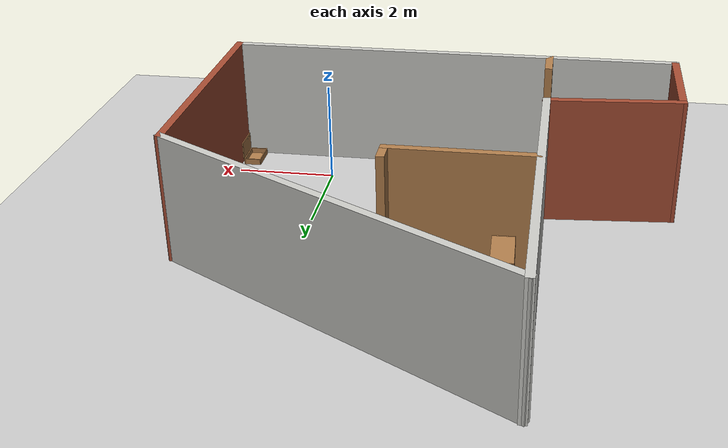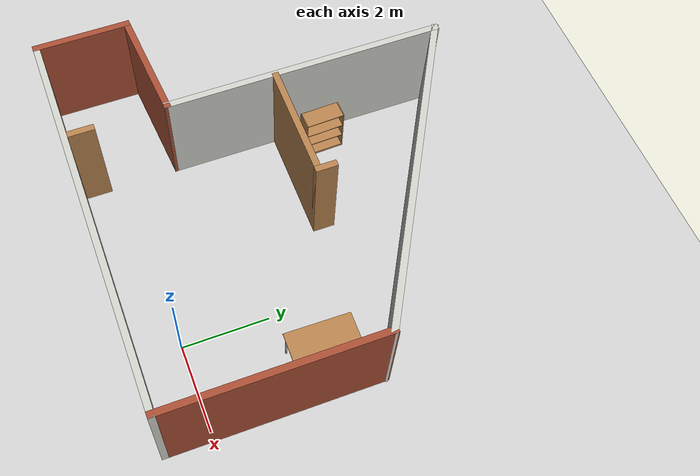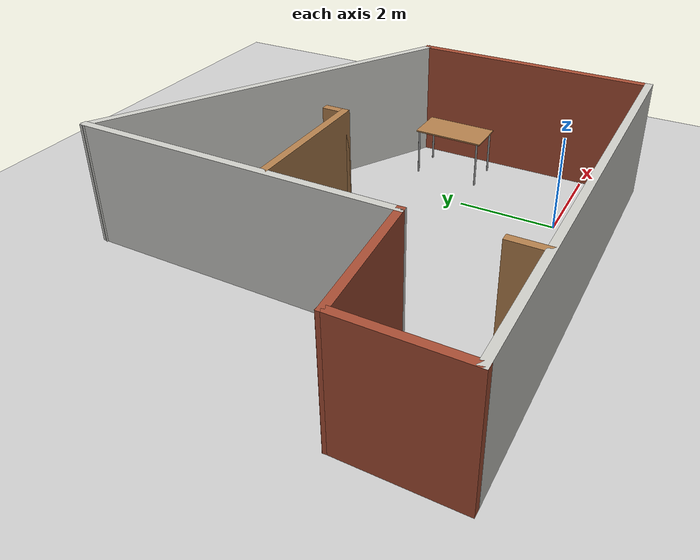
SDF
<sdf version="1.7">
 <world name="default">
  <light name="sun" type="directional">
   <pose>0 0 10 0 -0 0</pose>
   <diffuse>0.8 0.8 0.8 1</diffuse>
   <specular>0.2 0.2 0.2 1</specular>
   <attenuation>
    <range>1000</range>
    <constant>0.9</constant>
    <linear>0.01</linear>
    <quadratic>0.001</quadratic>
   </attenuation>
   <direction>-0.5 0.1 -0.9</direction>
   <spot><inner_angle>0</inner_angle><outer_angle>0</outer_angle><falloff>0</falloff></spot>
  </light>
  <model name="ground_plane">
   <static>1</static>
   <link name="link">
    <collision name="collision">
     <geometry><plane><normal>0 0 1</normal><size>100 100</size></plane></geometry>
     <surface>
      <contact><collide_bitmask>65535</collide_bitmask></contact>
      <friction><ode><mu>100</mu><mu2>50</mu2></ode></friction>
     </surface>
    </collision>
    <visual name="visual">
     <cast_shadows>0</cast_shadows>
     <geometry><plane><normal>0 0 1</normal><size>100 100</size></plane></geometry>
     <material>
      <script><uri>file://media/materials/scripts/gazebo.material</uri><name>Gazebo/Grey</name></script>
     </material>
    </visual>
   </link>
  </model>
  <gravity>0 0 -9.8</gravity>
  <magnetic_field>6e-06 2.3e-05 -4.2e-05</magnetic_field>
  <atmosphere type="adiabatic"/>
  <physics type="ode">
   <max_step_size>0.001</max_step_size>
   <real_time_factor>1</real_time_factor>
   <real_time_update_rate>1000</real_time_update_rate>
  </physics>
  <scene><ambient>0.4 0.4 0.4 1</ambient><background>0.7 0.7 0.7 1</background><shadows>1</shadows></scene>
  <spherical_coordinates>
   <surface_model>EARTH_WGS84</surface_model>
   <latitude_deg>0</latitude_deg>
   <longitude_deg>0</longitude_deg>
   <elevation>0</elevation>
   <heading_deg>0</heading_deg>
  </spherical_coordinates>
  <model name="navigation_world">
   <pose>-2.40046 3.30512 0 0 -0 0</pose>
   <link name="Wall_0">
    <collision name="Wall_0_Collision">
     <geometry><box><size>6.5 0.15 2.5</size></box></geometry>
     <pose>0 0 1.25 0 -0 0</pose>
    </collision>
    <visual name="Wall_0_Visual">
     <pose>0 0 1.25 0 -0 0</pose>
     <geometry><box><size>6.5 0.15 2.5</size></box></geometry>
     <material>
      <script><uri>file://media/materials/scripts/gazebo.material</uri><name>Gazebo/CeilingTiled</name></script>
      <ambient>1 1 1 1</ambient>
     </material>
     <meta><layer>0</layer></meta>
    </visual>
    <pose>-2.04267 1.13627 0 0 -0 1.5708</pose>
   </link>
   <link name="Wall_1">
    <collision name="Wall_1_Collision">
     <geometry><box><size>7.75 0.15 2.5</size></box></geometry>
     <pose>0 0 1.25 0 -0 0</pose>
    </collision>
    <visual name="Wall_1_Visual">
     <pose>0 0 1.25 0 -0 0</pose>
     <geometry><box><size>7.75 0.15 2.5</size></box></geometry>
     <material>
      <script><uri>file://media/materials/scripts/gazebo.material</uri><name>Gazebo/CeilingTiled</name></script>
      <ambient>1 1 1 1</ambient>
     </material>
     <meta><layer>0</layer></meta>
    </visual>
    <pose>1.24823 2.41127 0 0 -0 -0.523599</pose>
   </link>
   <link name="Wall_10">
    <collision name="Wall_10_Collision">
     <geometry><box><size>0.5 0.15 2.5</size></box></geometry>
     <pose>0 0 1.25 0 -0 0</pose>
    </collision>
    <visual name="Wall_10_Visual">
     <pose>0 0 1.25 0 -0 0</pose>
     <geometry><box><size>0.5 0.15 2.5</size></box></geometry>
     <material>
      <script><uri>file://media/materials/scripts/gazebo.material</uri><name>Gazebo/Wood</name></script>
      <ambient>1 1 1 1</ambient>
     </material>
     <meta><layer>0</layer></meta>
    </visual>
    <pose>0.613601 0.629251 0 0 -0 1.5708</pose>
   </link>
   <link name="Wall_2">
    <collision name="Wall_2_Collision">
     <geometry><box><size>5 0.15 2.5</size></box></geometry>
     <pose>0 0 1.25 0 -0 0</pose>
    </collision>
    <visual name="Wall_2_Visual">
     <pose>0 0 1.25 0 -0 0</pose>
     <geometry><box><size>5 0.15 2.5</size></box></geometry>
     <material>
      <script><uri>file://media/materials/scripts/gazebo.material</uri><name>Gazebo/Bricks</name></script>
      <ambient>1 1 1 1</ambient>
     </material>
     <meta><layer>0</layer></meta>
    </visual>
    <pose>4.53913 -1.91373 0 0 -0 -1.5708</pose>
   </link>
   <link name="Wall_3">
    <collision name="Wall_3_Collision">
     <geometry><box><size>9.25 0.15 2.5</size></box></geometry>
     <pose>0 0 1.25 0 -0 0</pose>
    </collision>
    <visual name="Wall_3_Visual">
     <pose>0 0 1.25 0 -0 0</pose>
     <geometry><box><size>9.25 0.15 2.5</size></box></geometry>
     <material>
      <script><uri>file://media/materials/scripts/gazebo.material</uri><name>Gazebo/CeilingTiled</name></script>
      <ambient>1 1 1 1</ambient>
     </material>
     <meta><layer>0</layer></meta>
    </visual>
    <pose>-0.010875 -4.33873 0 0 -0 3.14159</pose>
   </link>
   <link name="Wall_4">
    <collision name="Wall_4_Collision">
     <geometry><box><size>2.25 0.15 2.5</size></box></geometry>
     <pose>0 0 1.25 0 -0 0</pose>
    </collision>
    <visual name="Wall_4_Visual">
     <pose>0 0 1.25 0 -0 0</pose>
     <geometry><box><size>2.25 0.15 2.5</size></box></geometry>
     <material>
      <script><uri>file://media/materials/scripts/gazebo.material</uri><name>Gazebo/Bricks</name></script>
      <ambient>1 1 1 1</ambient>
     </material>
     <meta><layer>0</layer></meta>
    </visual>
    <pose>-4.56088 -3.28873 0 0 -0 1.5708</pose>
   </link>
   <link name="Wall_5">
    <collision name="Wall_5_Collision">
     <geometry><box><size>2.67614 0.15 2.5</size></box></geometry>
     <pose>0 0 1.25 0 -0 0</pose>
    </collision>
    <visual name="Wall_5_Visual">
     <pose>0 0 1.25 0 -0 0</pose>
     <geometry><box><size>2.67614 0.15 2.5</size></box></geometry>
     <material>
      <script><uri>file://media/materials/scripts/gazebo.material</uri><name>Gazebo/Bricks</name></script>
      <ambient>1 1 1 1</ambient>
     </material>
     <meta><layer>0</layer></meta>
    </visual>
    <pose>-3.30177 -2.13873 0 0 -0 0.079255</pose>
   </link>
   <link name="Wall_7">
    <collision name="Wall_7_Collision">
     <geometry><box><size>0.75 0.15 2.5</size></box></geometry>
     <pose>0 0 1.25 0 -0 0</pose>
    </collision>
    <visual name="Wall_7_Visual">
     <pose>0 0 1.25 0 -0 0</pose>
     <geometry><box><size>0.75 0.15 2.5</size></box></geometry>
     <material>
      <script><uri>file://media/materials/scripts/gazebo.material</uri><name>Gazebo/Wood</name></script>
      <ambient>1 1 1 1</ambient>
     </material>
     <meta><layer>0</layer></meta>
    </visual>
    <pose>-2.02663 -4.03278 0 0 -0 1.5708</pose>
   </link>
   <link name="Wall_9">
    <collision name="Wall_9_Collision">
     <geometry><box><size>2.75 0.15 2.5</size></box></geometry>
     <pose>0 0 1.25 0 -0 0</pose>
    </collision>
    <visual name="Wall_9_Visual">
     <pose>0 0 1.25 0 -0 0</pose>
     <geometry><box><size>2.75 0.15 2.5</size></box></geometry>
     <material>
      <script><uri>file://media/materials/scripts/gazebo.material</uri><name>Gazebo/Wood</name></script>
      <ambient>1 1 1 1</ambient>
     </material>
     <meta><layer>0</layer></meta>
    </visual>
    <pose>-0.686399 0.454251 0 0 -0 0</pose>
   </link>
   <static>1</static>
  </model>
  <model name="bookshelf">
   <static>1</static>
   <link name="link">
    <inertial><mass>1</mass></inertial>
    <collision name="back">
     <pose>0 0.005 0.6 0 -0 0</pose>
     <geometry><box><size>0.9 0.01 1.2</size></box></geometry>
    </collision>
    <visual name="visual1">
     <pose>0 0.005 0.6 0 -0 0</pose>
     <geometry><box><size>0.9 0.01 1.2</size></box></geometry>
     <material>
      <script><uri>file://media/materials/scripts/gazebo.material</uri><name>Gazebo/Wood</name></script>
     </material>
    </visual>
    <collision name="left_side">
     <pose>0.45 -0.195 0.6 0 -0 0</pose>
     <geometry><box><size>0.02 0.4 1.2</size></box></geometry>
    </collision>
    <visual name="visual2">
     <pose>0.45 -0.195 0.6 0 -0 0</pose>
     <geometry><box><size>0.02 0.4 1.2</size></box></geometry>
     <material>
      <script><uri>file://media/materials/scripts/gazebo.material</uri><name>Gazebo/Wood</name></script>
     </material>
    </visual>
    <collision name="right_side">
     <pose>-0.45 -0.195 0.6 0 -0 0</pose>
     <geometry><box><size>0.02 0.4 1.2</size></box></geometry>
    </collision>
    <visual name="visual3">
     <pose>-0.45 -0.195 0.6 0 -0 0</pose>
     <geometry><box><size>0.02 0.4 1.2</size></box></geometry>
     <material>
      <script><uri>file://media/materials/scripts/gazebo.material</uri><name>Gazebo/Wood</name></script>
     </material>
    </visual>
    <collision name="bottom">
     <pose>0 -0.195 0.03 0 -0 0</pose>
     <geometry><box><size>0.88 0.4 0.06</size></box></geometry>
    </collision>
    <visual name="visual4">
     <pose>0 -0.195 0.03 0 -0 0</pose>
     <geometry><box><size>0.88 0.4 0.06</size></box></geometry>
     <material>
      <script><uri>file://media/materials/scripts/gazebo.material</uri><name>Gazebo/Wood</name></script>
     </material>
    </visual>
    <collision name="top">
     <pose>0 -0.195 1.19 0 -0 0</pose>
     <geometry><box><size>0.88 0.4 0.02</size></box></geometry>
    </collision>
    <visual name="visual5">
     <pose>0 -0.195 1.19 0 -0 0</pose>
     <geometry><box><size>0.88 0.4 0.02</size></box></geometry>
     <material>
      <script><uri>file://media/materials/scripts/gazebo.material</uri><name>Gazebo/Wood</name></script>
     </material>
    </visual>
    <collision name="low_shelf">
     <pose>0 -0.195 0.43 0 -0 0</pose>
     <geometry><box><size>0.88 0.4 0.02</size></box></geometry>
    </collision>
    <visual name="visual6">
     <pose>0 -0.195 0.43 0 -0 0</pose>
     <geometry><box><size>0.88 0.4 0.02</size></box></geometry>
     <material>
      <script><uri>file://media/materials/scripts/gazebo.material</uri><name>Gazebo/Wood</name></script>
     </material>
    </visual>
    <collision name="high_shelf">
     <pose>0 -0.195 0.8 0 -0 0</pose>
     <geometry><box><size>0.88 0.4 0.02</size></box></geometry>
    </collision>
    <visual name="visual7">
     <pose>0 -0.195 0.8 0 -0 0</pose>
     <geometry><box><size>0.88 0.4 0.02</size></box></geometry>
     <material>
      <script><uri>file://media/materials/scripts/gazebo.material</uri><name>Gazebo/Wood</name></script>
     </material>
    </visual>
   </link>
   <pose>-4.1031 4.70892 0 0 -0 1.60305</pose>
  </model>
  <model name="table">
   <static>1</static>
   <link name="link">
    <collision name="surface">
     <pose>0 0 1 0 -0 0</pose>
     <geometry><box><size>1.5 0.8 0.03</size></box></geometry>
     <surface><friction><ode><mu>0.6</mu><mu2>0.6</mu2></ode></friction></surface>
    </collision>
    <visual name="visual1">
     <pose>0 0 1 0 -0 0</pose>
     <geometry><box><size>1.5 0.8 0.03</size></box></geometry>
     <material>
      <script><uri>file://media/materials/scripts/gazebo.material</uri><name>Gazebo/Wood</name></script>
     </material>
    </visual>
    <collision name="front_left_leg">
     <pose>0.68 0.38 0.5 0 -0 0</pose>
     <geometry><cylinder><radius>0.02</radius><length>1</length></cylinder></geometry>
    </collision>
    <visual name="front_left_leg">
     <pose>0.68 0.38 0.5 0 -0 0</pose>
     <geometry><cylinder><radius>0.02</radius><length>1</length></cylinder></geometry>
     <material>
      <script><uri>file://media/materials/scripts/gazebo.material</uri><name>Gazebo/Grey</name></script>
     </material>
    </visual>
    <collision name="front_right_leg">
     <pose>0.68 -0.38 0.5 0 -0 0</pose>
     <geometry><cylinder><radius>0.02</radius><length>1</length></cylinder></geometry>
    </collision>
    <visual name="front_right_leg">
     <pose>0.68 -0.38 0.5 0 -0 0</pose>
     <geometry><cylinder><radius>0.02</radius><length>1</length></cylinder></geometry>
     <material>
      <script><uri>file://media/materials/scripts/gazebo.material</uri><name>Gazebo/Grey</name></script>
     </material>
    </visual>
    <collision name="back_right_leg">
     <pose>-0.68 -0.38 0.5 0 -0 0</pose>
     <geometry><cylinder><radius>0.02</radius><length>1</length></cylinder></geometry>
    </collision>
    <visual name="back_right_leg">
     <pose>-0.68 -0.38 0.5 0 -0 0</pose>
     <geometry><cylinder><radius>0.02</radius><length>1</length></cylinder></geometry>
     <material>
      <script><uri>file://media/materials/scripts/gazebo.material</uri><name>Gazebo/Grey</name></script>
     </material>
    </visual>
    <collision name="back_left_leg">
     <pose>-0.68 0.38 0.5 0 -0 0</pose>
     <geometry><cylinder><radius>0.02</radius><length>1</length></cylinder></geometry>
    </collision>
    <visual name="back_left_leg">
     <pose>-0.68 0.38 0.5 0 -0 0</pose>
     <geometry><cylinder><radius>0.02</radius><length>1</length></cylinder></geometry>
     <material>
      <script><uri>file://media/materials/scripts/gazebo.material</uri><name>Gazebo/Grey</name></script>
     </material>
    </visual>
   </link>
   <pose>1.273 2.73801 0 0 -0 1.55526</pose>
  </model>
  <model name="wooden_case">
   <link name="base">
    <pose>0 0 0.024 0 -0 0</pose>
    <inertial>
     <pose>-0.022184 0 0.171592 0 -0 0</pose>
     <mass>3.96264</mass>
     <inertia>
      <ixx>0.213536</ixx>
      <ixy>0</ixy>
      <ixz>0.000779377</ixz>
      <iyy>0.0708943</iyy>
      <iyz>0</iyz>
      <izz>0.154604</izz>
     </inertia>
    </inertial>
    <collision name="collision_back">
     <pose>-0.053975 0 0.1778 0 -0 0</pose>
     <geometry><box><size>0.01905 0.5461 0.3175</size></box></geometry>
     <surface>
      <contact>
       <poissons_ratio>0.347</poissons_ratio>
       <elastic_modulus>8.8e+09</elastic_modulus>
       <ode><kp>100000</kp><kd>100</kd><max_vel>100</max_vel><min_depth>0.001</min_depth></ode>
      </contact>
      <friction>
       <torsional>
        <coefficient>1</coefficient>
        <use_patch_radius>0</use_patch_radius>
        <surface_radius>0.01</surface_radius>
       </torsional>
      </friction>
     </surface>
    </collision>
    <visual name="visual_back">
     <pose>-0.053975 0 0.1778 0 -0 0</pose>
     <geometry><box><size>0.01905 0.5461 0.3175</size></box></geometry>
     <material>
      <script><uri>file://media/materials/scripts/gazebo.material</uri><name>Gazebo/Wood</name></script>
     </material>
    </visual>
    <collision name="collision_bottom">
     <pose>0 0 0.009525 0 -0 0</pose>
     <geometry><box><size>0.127 0.5842 0.01905</size></box></geometry>
     <surface>
      <contact>
       <poissons_ratio>0.347</poissons_ratio>
       <elastic_modulus>8.8e+09</elastic_modulus>
       <ode><kp>100000</kp><kd>100</kd><max_vel>100</max_vel><min_depth>0.001</min_depth></ode>
      </contact>
      <friction>
       <torsional>
        <coefficient>1</coefficient>
        <use_patch_radius>0</use_patch_radius>
        <surface_radius>0.01</surface_radius>
       </torsional>
      </friction>
     </surface>
    </collision>
    <visual name="visual_bottom">
     <pose>0 0 0.009525 0 -0 0</pose>
     <geometry><box><size>0.127 0.5842 0.01905</size></box></geometry>
     <material>
      <script><uri>file://media/materials/scripts/gazebo.material</uri><name>Gazebo/Wood</name></script>
     </material>
    </visual>
    <collision name="collision_top">
     <pose>0 0 0.346075 0 -0 0</pose>
     <geometry><box><size>0.127 0.5842 0.01905</size></box></geometry>
     <surface>
      <contact>
       <poissons_ratio>0.347</poissons_ratio>
       <elastic_modulus>8.8e+09</elastic_modulus>
       <ode><kp>100000</kp><kd>100</kd><max_vel>100</max_vel><min_depth>0.001</min_depth></ode>
      </contact>
      <friction>
       <torsional>
        <coefficient>1</coefficient>
        <use_patch_radius>0</use_patch_radius>
        <surface_radius>0.01</surface_radius>
       </torsional>
      </friction>
     </surface>
    </collision>
    <visual name="visual_top">
     <pose>0 0 0.346075 0 -0 0</pose>
     <geometry><box><size>0.127 0.5842 0.01905</size></box></geometry>
     <material>
      <script><uri>file://media/materials/scripts/gazebo.material</uri><name>Gazebo/Wood</name></script>
     </material>
    </visual>
    <collision name="collision_left">
     <pose>0 -0.282575 0.1778 0 -0 0</pose>
     <geometry><box><size>0.127 0.01905 0.3175</size></box></geometry>
     <surface>
      <contact>
       <poissons_ratio>0.347</poissons_ratio>
       <elastic_modulus>8.8e+09</elastic_modulus>
       <ode><kp>100000</kp><kd>100</kd><max_vel>100</max_vel><min_depth>0.001</min_depth></ode>
      </contact>
      <friction>
       <torsional>
        <coefficient>1</coefficient>
        <use_patch_radius>0</use_patch_radius>
        <surface_radius>0.01</surface_radius>
       </torsional>
      </friction>
     </surface>
    </collision>
    <visual name="visual_left">
     <pose>0 -0.282575 0.1778 0 -0 0</pose>
     <geometry><box><size>0.127 0.01905 0.3175</size></box></geometry>
     <material>
      <script><uri>file://media/materials/scripts/gazebo.material</uri><name>Gazebo/Wood</name></script>
     </material>
    </visual>
    <collision name="collision_right">
     <pose>0 0.282575 0.1778 0 -0 0</pose>
     <geometry><box><size>0.127 0.01905 0.3175</size></box></geometry>
     <surface>
      <contact>
       <poissons_ratio>0.347</poissons_ratio>
       <elastic_modulus>8.8e+09</elastic_modulus>
       <ode><kp>100000</kp><kd>100</kd><max_vel>100</max_vel><min_depth>0.001</min_depth></ode>
      </contact>
      <friction>
       <torsional>
        <coefficient>1</coefficient>
        <use_patch_radius>0</use_patch_radius>
        <surface_radius>0.01</surface_radius>
       </torsional>
      </friction>
     </surface>
    </collision>
    <visual name="visual_right">
     <pose>0 0.282575 0.1778 0 -0 0</pose>
     <geometry><box><size>0.127 0.01905 0.3175</size></box></geometry>
     <material>
      <script><uri>file://media/materials/scripts/gazebo.material</uri><name>Gazebo/Wood</name></script>
     </material>
    </visual>
    <collision name="collision_block_left">
     <pose>0.0095 -0.2151 -0.012 0 -0 0</pose>
     <geometry><box><size>0.108 0.05 0.024</size></box></geometry>
     <surface>
      <contact>
       <poissons_ratio>0.347</poissons_ratio>
       <elastic_modulus>8.8e+09</elastic_modulus>
       <ode><kp>100000</kp><kd>100</kd><max_vel>100</max_vel><min_depth>0.001</min_depth></ode>
      </contact>
      <friction>
       <torsional>
        <coefficient>1</coefficient>
        <use_patch_radius>0</use_patch_radius>
        <surface_radius>0.01</surface_radius>
       </torsional>
      </friction>
     </surface>
    </collision>
    <visual name="visual_block_left">
     <pose>0.0095 -0.2151 -0.012 0 -0 0</pose>
     <geometry><box><size>0.108 0.05 0.024</size></box></geometry>
     <material>
      <script><uri>file://media/materials/scripts/gazebo.material</uri><name>Gazebo/Wood</name></script>
     </material>
    </visual>
    <collision name="collision_block_right">
     <pose>0.0095 0.2151 -0.012 0 -0 0</pose>
     <geometry><box><size>0.108 0.05 0.024</size></box></geometry>
     <surface>
      <contact>
       <poissons_ratio>0.347</poissons_ratio>
       <elastic_modulus>8.8e+09</elastic_modulus>
       <ode><kp>100000</kp><kd>100</kd><max_vel>100</max_vel><min_depth>0.001</min_depth></ode>
      </contact>
      <friction>
       <torsional>
        <coefficient>1</coefficient>
        <use_patch_radius>0</use_patch_radius>
        <surface_radius>0.01</surface_radius>
       </torsional>
      </friction>
     </surface>
    </collision>
    <visual name="visual_block_right">
     <pose>0.0095 0.2151 -0.012 0 -0 0</pose>
     <geometry><box><size>0.108 0.05 0.024</size></box></geometry>
     <material>
      <script><uri>file://media/materials/scripts/gazebo.material</uri><name>Gazebo/Wood</name></script>
     </material>
    </visual>
   </link>
   <link name="lid">
    <pose>0.243775 0 0.009525 0 -0 0</pose>
    <inertial>
     <mass>1.97874</mass>
     <inertia>
      <ixx>0.0563367</ixx>
      <ixy>0</ixy>
      <ixz>0</ixz>
      <iyy>0.020911</iyy>
      <iyz>0</iyz>
      <izz>0.0771281</izz>
     </inertia>
    </inertial>
    <collision name="collision">
     <geometry><box><size>0.3556 0.5842 0.01905</size></box></geometry>
     <surface>
      <contact>
       <poissons_ratio>0.347</poissons_ratio>
       <elastic_modulus>8.8e+09</elastic_modulus>
       <ode><kp>100000</kp><kd>100</kd><max_vel>100</max_vel><min_depth>0.001</min_depth></ode>
      </contact>
      <friction>
       <torsional>
        <coefficient>1</coefficient>
        <use_patch_radius>0</use_patch_radius>
        <surface_radius>0.01</surface_radius>
       </torsional>
      </friction>
     </surface>
    </collision>
    <visual name="visual">
     <geometry><box><size>0.3556 0.5842 0.01905</size></box></geometry>
     <material>
      <script><uri>file://media/materials/scripts/gazebo.material</uri><name>Gazebo/Wood</name></script>
     </material>
    </visual>
    <visual name="tee_nut_1">
     <pose>0.122 -0.216 0 0 -0 0</pose>
     <geometry><cylinder><radius>0.00635</radius><length>0.0192405</length></cylinder></geometry>
     <material>
      <script><uri>file://media/materials/scripts/gazebo.material</uri><name>Gazebo/Grey</name></script>
     </material>
    </visual>
    <visual name="tee_nut_2">
     <pose>0.122 -0.088 0 0 -0 0</pose>
     <geometry><cylinder><radius>0.00635</radius><length>0.0192405</length></cylinder></geometry>
     <material>
      <script><uri>file://media/materials/scripts/gazebo.material</uri><name>Gazebo/Grey</name></script>
     </material>
    </visual>
    <visual name="tee_nut_3">
     <pose>0.122 0.088 0 0 -0 0</pose>
     <geometry><cylinder><radius>0.00635</radius><length>0.0192405</length></cylinder></geometry>
     <material>
      <script><uri>file://media/materials/scripts/gazebo.material</uri><name>Gazebo/Grey</name></script>
     </material>
    </visual>
    <visual name="tee_nut_4">
     <pose>0.122 0.216 0 0 -0 0</pose>
     <geometry><cylinder><radius>0.00635</radius><length>0.0192405</length></cylinder></geometry>
     <material>
      <script><uri>file://media/materials/scripts/gazebo.material</uri><name>Gazebo/Grey</name></script>
     </material>
    </visual>
   </link>
   <joint name="lid_hinge" type="revolute">
    <pose>-0.1778 0 0.01905 0 -0 0</pose>
    <parent>base</parent>
    <child>lid</child>
    <axis>
     <xyz>0 1 0</xyz>
     <limit><upper>0.523599</upper><lower>-1.5708</lower></limit>
     <dynamics><spring_reference>0</spring_reference><spring_stiffness>0</spring_stiffness></dynamics>
    </axis>
   </joint>
   <pose>2.03431 -0.605008 0.06247 -0 -1.57079 0.014936</pose>
  </model>
  <light name="user_point_light_0" type="point">
   <pose>-1.1125 1.00138 1 0 -0 0</pose>
   <diffuse>0.5 0.5 0.5 1</diffuse>
   <specular>0.1 0.1 0.1 1</specular>
   <attenuation>
    <range>20</range>
    <constant>0.5</constant>
    <linear>0.01</linear>
    <quadratic>0.001</quadratic>
   </attenuation>
   <cast_shadows>0</cast_shadows>
   <direction>0 0 -1</direction>
  </light>
  <light name="user_point_light_1" type="point">
   <pose>-5.21673 0.166602 1 0 -0 0</pose>
   <diffuse>0.5 0.5 0.5 1</diffuse>
   <specular>0.1 0.1 0.1 1</specular>
   <attenuation>
    <range>20</range>
    <constant>0.5</constant>
    <linear>0.01</linear>
    <quadratic>0.001</quadratic>
   </attenuation>
   <cast_shadows>0</cast_shadows>
   <direction>0 0 -1</direction>
  </light>
  <light name="user_point_light_2" type="point">
   <pose>-2.86879 5.18889 1 0 -0 0</pose>
   <diffuse>0.5 0.5 0.5 1</diffuse>
   <specular>0.1 0.1 0.1 1</specular>
   <attenuation>
    <range>20</range>
    <constant>0.5</constant>
    <linear>0.01</linear>
    <quadratic>0.001</quadratic>
   </attenuation>
   <cast_shadows>0</cast_shadows>
   <direction>0 0 -1</direction>
  </light>
  <light name="user_point_light_3" type="point">
   <pose>1.23892 0.261804 1 0 -0 0</pose>
   <diffuse>0.5 0.5 0.5 1</diffuse>
   <specular>0.1 0.1 0.1 1</specular>
   <attenuation>
    <range>20</range>
    <constant>0.5</constant>
    <linear>0.01</linear>
    <quadratic>0.001</quadratic>
   </attenuation>
   <cast_shadows>0</cast_shadows>
   <direction>0 0 -1</direction>
  </light>
  <light name="user_point_light_4" type="point">
   <pose>0.416606 4.06658 1 0 -0 0</pose>
   <diffuse>0.5 0.5 0.5 1</diffuse>
   <specular>0.1 0.1 0.1 1</specular>
   <attenuation>
    <range>20</range>
    <constant>0.5</constant>
    <linear>0.01</linear>
    <quadratic>0.001</quadratic>
   </attenuation>
   <cast_shadows>0</cast_shadows>
   <direction>0 0 -1</direction>
  </light>
 </world>
</sdf>
